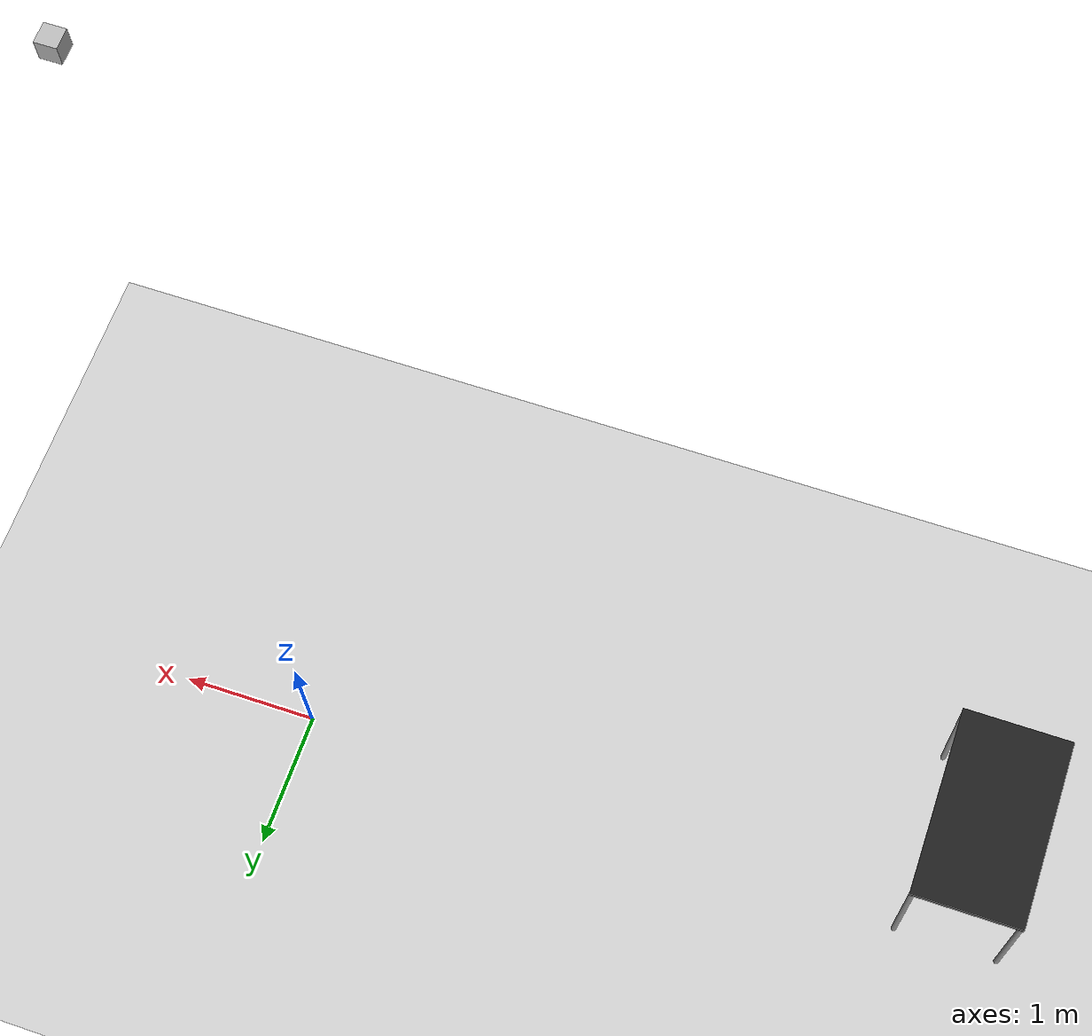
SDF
<sdf version="1.7">
 <world name="default">
  <model name="ground_plane">
   <static>1</static>
   <link name="link">
    <collision name="collision">
     <geometry><plane><normal>0 0 1</normal><size>100 100</size></plane></geometry>
     <surface><friction><ode><mu>100</mu><mu2>50</mu2></ode></friction></surface>
    </collision>
    <visual name="visual">
     <cast_shadows>0</cast_shadows>
     <geometry><plane><normal>0 0 1</normal><size>100 100</size></plane></geometry>
     <material><script><uri>file://media/s/scripts/gazebo.</uri><name>Gazebo/Grey</name></script></material>
    </visual>
   </link>
  </model>
  <model name="table">
   <static>0</static>
   <link name="link">
    <collision name="surface">
     <pose>0 0 1 0 -0 0</pose>
     <geometry><box><size>1.5 0.8 0.03</size></box></geometry>
     <surface><friction><ode><mu>0.6</mu><mu2>0.6</mu2></ode></friction></surface>
    </collision>
    <visual name="visual1">
     <pose>0 0 1 0 -0 0</pose>
     <geometry><box><size>1.4 0.8 0.04</size></box></geometry>
     <material>
      <script><uri>file://media/materials/scripts/gazebo.material</uri><name>Gazebo/Black</name></script>
     </material>
    </visual>
    <collision name="front_left_leg">
     <pose>0.68 0.38 0.5 0 -0 0</pose>
     <geometry><cylinder><radius>0.02</radius><length>1</length></cylinder></geometry>
    </collision>
    <visual name="front_left_leg">
     <pose>0.68 0.38 0.5 0 -0 0</pose>
     <geometry><cylinder><radius>0.02</radius><length>1</length></cylinder></geometry>
     <material>
      <script><uri>file://media/materials/scripts/gazebo.material</uri><name>Gazebo/Grey</name></script>
     </material>
    </visual>
    <collision name="front_right_leg">
     <pose>0.68 -0.38 0.5 0 -0 0</pose>
     <geometry><cylinder><radius>0.02</radius><length>1</length></cylinder></geometry>
    </collision>
    <visual name="front_right_leg">
     <pose>0.68 -0.38 0.5 0 -0 0</pose>
     <geometry><cylinder><radius>0.02</radius><length>1</length></cylinder></geometry>
     <material>
      <script><uri>file://media/materials/scripts/gazebo.material</uri><name>Gazebo/Grey</name></script>
     </material>
    </visual>
    <collision name="back_right_leg">
     <pose>-0.68 -0.38 0.5 0 -0 0</pose>
     <geometry><cylinder><radius>0.02</radius><length>1</length></cylinder></geometry>
    </collision>
    <visual name="back_right_leg">
     <pose>-0.68 -0.38 0.5 0 -0 0</pose>
     <geometry><cylinder><radius>0.02</radius><length>1</length></cylinder></geometry>
     <material>
      <script><uri>file://media/materials/scripts/gazebo.material</uri><name>Gazebo/Grey</name></script>
     </material>
    </visual>
    <collision name="back_left_leg">
     <pose>-0.68 0.38 0.5 0 -0 0</pose>
     <geometry><cylinder><radius>0.02</radius><length>1</length></cylinder></geometry>
    </collision>
    <visual name="back_left_leg">
     <pose>-0.68 0.38 0.5 0 -0 0</pose>
     <geometry><cylinder><radius>0.02</radius><length>1</length></cylinder></geometry>
     <material>
      <script><uri>file://media/materials/scripts/gazebo.material</uri><name>Gazebo/Grey</name></script>
     </material>
    </visual>
    <inertial>
     <inertia><ixx>1</ixx><ixy>0</ixy><ixz>0</ixz><iyy>1</iyy><iyz>0</iyz><izz>1</izz></inertia>
     <mass>1</mass>
    </inertial>
   </link>
   <pose>-4.92357 -0.531593 -9e-06 0 -0 -1.57079</pose>
  </model>
  <model name="overhead_camera">
   <static>1</static>
   <pose>0 0 8 3.14159 1.57079 3.14159</pose>
   <link name="link">
    <visual name="visual"><geometry><box><size>0.1 0.1 0.1</size></box></geometry></visual>
    <sensor name="overhead_camera_sensor" type="camera">
     <update_rate>5</update_rate>
     <camera name="overhead_cam">
      <horizontal_fov>1.2</horizontal_fov>
      <image><width>1024</width><height>1024</height><format>R8G8B8</format></image>
      <clip><near>0.1</near><far>100</far></clip>
     </camera>
     <plugin name="camera_controller" filename="libgazebo_ros_camera.so">
      <alwaysOn>1</alwaysOn>
      <updateRate>5.0</updateRate>
      <cameraName>overhead_camera</cameraName>
      <imageTopicName>image_raw</imageTopicName>
      <frameName>overhead_camera_link</frameName>
     </plugin>
    </sensor>
   </link>
  </model>
 </world>
</sdf>
